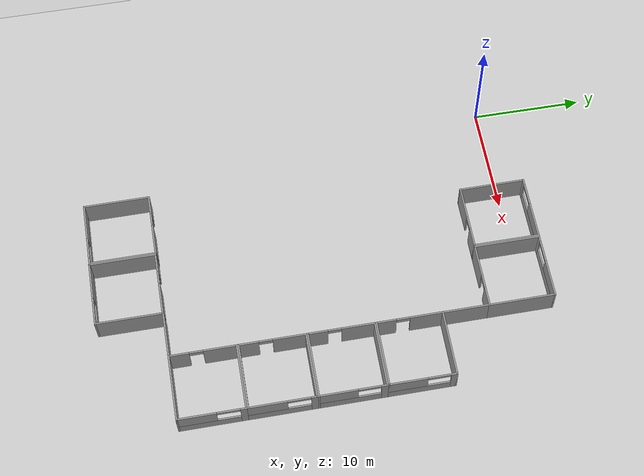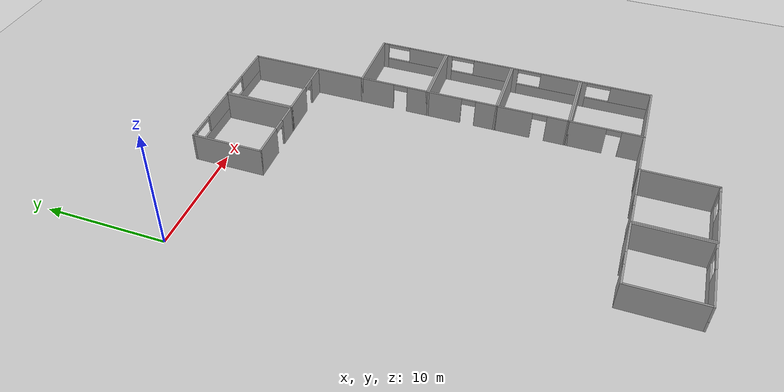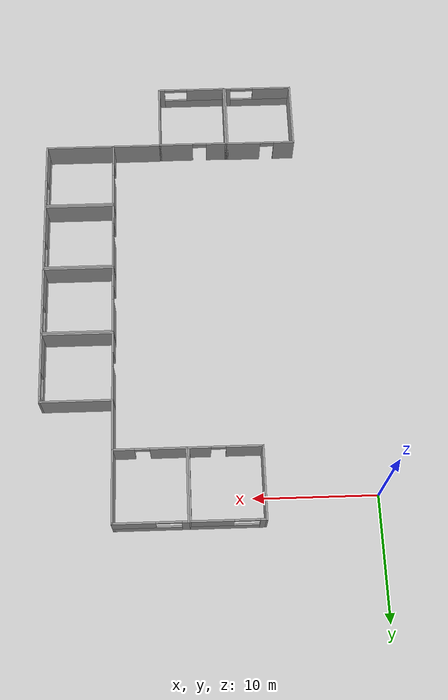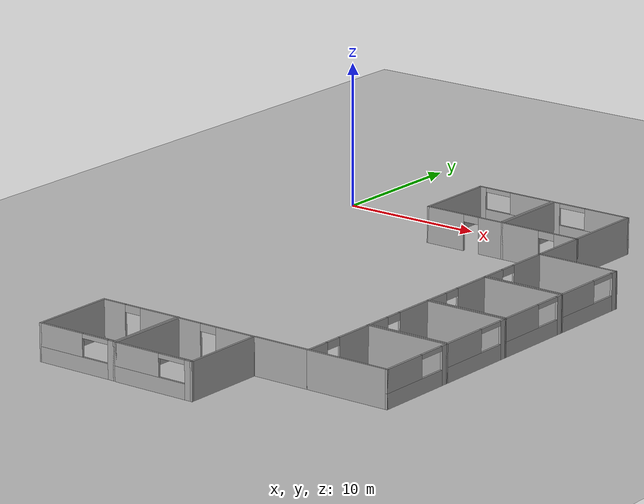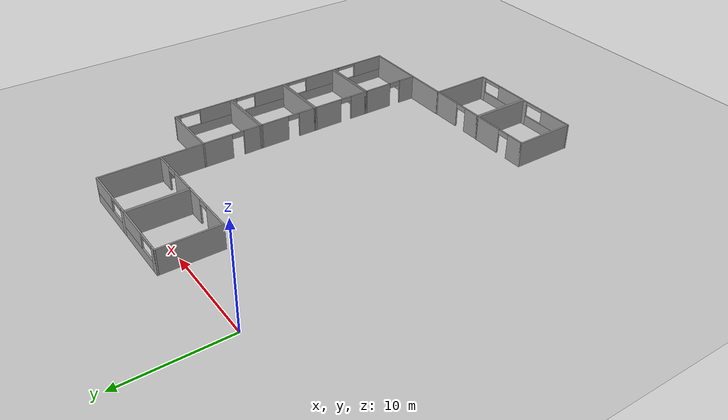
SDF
<sdf version="1.6">
 <world name="default">
  <model name="ground_plane">
   <static>1</static>
   <link name="link">
    <collision name="collision">
     <geometry><plane><normal>0 0 1</normal><size>100 100</size></plane></geometry>
     <surface>
      <contact><collide_bitmask>65535</collide_bitmask></contact>
      <friction><ode><mu>100</mu><mu2>50</mu2></ode></friction>
     </surface>
    </collision>
    <visual name="visual">
     <cast_shadows>0</cast_shadows>
     <geometry><plane><normal>0 0 1</normal><size>100 100</size></plane></geometry>
     <material>
      <script><uri>file://media/materials/scripts/gazebo.material</uri><name>Gazebo/Grey</name></script>
     </material>
    </visual>
   </link>
  </model>
  <model name="patient_room_clone_1">
   <pose>12 0 0 0 -0 0</pose>
   <link name="Wall_26">
    <pose>-0 2.218 0 0 -0 0</pose>
    <visual name="Wall_26_Visual_0">
     <pose>-2.7125 0 1.25 0 -0 0</pose>
     <geometry><box><size>0.575 0.15 2.5</size></box></geometry>
     <material>
      <script><uri>file://media/materials/scripts/gazebo.material</uri><name>Gazebo/Grey</name></script>
      <ambient>1 1 1 1</ambient>
     </material>
     <meta><layer>0</layer></meta>
    </visual>
    <collision name="Wall_26_Collision_0">
     <geometry><box><size>0.575 0.15 2.5</size></box></geometry>
     <pose>-2.7125 0 1.25 0 -0 0</pose>
    </collision>
    <visual name="Wall_26_Visual_1">
     <pose>0.2875 0 0.5 0 -0 0</pose>
     <geometry><box><size>5.425 0.15 1</size></box></geometry>
     <material>
      <script><uri>file://media/materials/scripts/gazebo.material</uri><name>Gazebo/Grey</name></script>
      <ambient>1 1 1 1</ambient>
     </material>
     <meta><layer>0</layer></meta>
    </visual>
    <collision name="Wall_26_Collision_1">
     <geometry><box><size>5.425 0.15 1</size></box></geometry>
     <pose>0.2875 0 0.5 0 -0 0</pose>
    </collision>
    <visual name="Wall_26_Visual_2">
     <pose>1.2875 0 1.75 0 -0 0</pose>
     <geometry><box><size>3.425 0.15 1.5</size></box></geometry>
     <material>
      <script><uri>file://media/materials/scripts/gazebo.material</uri><name>Gazebo/Grey</name></script>
      <ambient>1 1 1 1</ambient>
     </material>
     <meta><layer>0</layer></meta>
    </visual>
    <collision name="Wall_26_Collision_2">
     <geometry><box><size>3.425 0.15 1.5</size></box></geometry>
     <pose>1.2875 0 1.75 0 -0 0</pose>
    </collision>
    <visual name="Wall_26_Visual_3">
     <pose>-1.425 0 2.35 0 -0 0</pose>
     <geometry><box><size>2 0.15 0.3</size></box></geometry>
     <material>
      <script><uri>file://media/materials/scripts/gazebo.material</uri><name>Gazebo/Grey</name></script>
      <ambient>1 1 1 1</ambient>
     </material>
     <meta><layer>0</layer></meta>
    </visual>
    <collision name="Wall_26_Collision_3">
     <geometry><box><size>2 0.15 0.3</size></box></geometry>
     <pose>-1.425 0 2.35 0 -0 0</pose>
    </collision>
   </link>
   <link name="Wall_28">
    <collision name="Wall_28_Collision">
     <geometry><box><size>6 0.15 2.5</size></box></geometry>
     <pose>0 0 1.25 0 -0 0</pose>
    </collision>
    <visual name="Wall_28_Visual">
     <pose>0 0 1.25 0 -0 0</pose>
     <geometry><box><size>6 0.15 2.5</size></box></geometry>
     <material>
      <script><uri>file://media/materials/scripts/gazebo.material</uri><name>Gazebo/Grey</name></script>
      <ambient>1 1 1 1</ambient>
     </material>
     <meta><layer>0</layer></meta>
    </visual>
    <pose>-2.925 -0.707 0 0 -0 -1.5708</pose>
   </link>
   <link name="Wall_29">
    <pose>-0 -3.632 0 0 -0 0</pose>
    <visual name="Wall_29_Visual_0">
     <pose>-1.5125 0 1.25 0 -0 0</pose>
     <geometry><box><size>2.975 0.15 2.5</size></box></geometry>
     <material>
      <script><uri>file://media/materials/scripts/gazebo.material</uri><name>Gazebo/Grey</name></script>
      <ambient>1 1 1 1</ambient>
     </material>
     <meta><layer>0</layer></meta>
    </visual>
    <collision name="Wall_29_Collision_0">
     <geometry><box><size>2.975 0.15 2.5</size></box></geometry>
     <pose>-1.5125 0 1.25 0 -0 0</pose>
    </collision>
    <visual name="Wall_29_Visual_1">
     <pose>2.0875 0 1.25 0 -0 0</pose>
     <geometry><box><size>1.825 0.15 2.5</size></box></geometry>
     <material>
      <script><uri>file://media/materials/scripts/gazebo.material</uri><name>Gazebo/Grey</name></script>
      <ambient>1 1 1 1</ambient>
     </material>
     <meta><layer>0</layer></meta>
    </visual>
    <collision name="Wall_29_Collision_1">
     <geometry><box><size>1.825 0.15 2.5</size></box></geometry>
     <pose>2.0875 0 1.25 0 -0 0</pose>
    </collision>
    <visual name="Wall_29_Visual_2">
     <pose>0.575 0 2.25 0 -0 0</pose>
     <geometry><box><size>1.2 0.15 0.5</size></box></geometry>
     <material>
      <script><uri>file://media/materials/scripts/gazebo.material</uri><name>Gazebo/Grey</name></script>
      <ambient>1 1 1 1</ambient>
     </material>
     <meta><layer>0</layer></meta>
    </visual>
    <collision name="Wall_29_Collision_2">
     <geometry><box><size>1.2 0.15 0.5</size></box></geometry>
     <pose>0.575 0 2.25 0 -0 0</pose>
    </collision>
   </link>
   <link name="Wall_30">
    <collision name="Wall_30_Collision">
     <geometry><box><size>6 0.15 2.5</size></box></geometry>
     <pose>0 0 1.25 0 -0 0</pose>
    </collision>
    <visual name="Wall_30_Visual">
     <pose>0 0 1.25 0 -0 0</pose>
     <geometry><box><size>6 0.15 2.5</size></box></geometry>
     <material>
      <script><uri>file://media/materials/scripts/gazebo.material</uri><name>Gazebo/Grey</name></script>
      <ambient>1 1 1 1</ambient>
     </material>
     <meta><layer>0</layer></meta>
    </visual>
    <pose>2.925 -0.707 0 0 -0 1.5708</pose>
   </link>
   <static>1</static>
  </model>
  <model name="patient_room_clone_3">
   <pose>18 0 0 0 -0 0</pose>
   <link name="Wall_26">
    <pose>-0 2.218 0 0 -0 0</pose>
    <visual name="Wall_26_Visual_0">
     <pose>-2.7125 0 1.25 0 -0 0</pose>
     <geometry><box><size>0.575 0.15 2.5</size></box></geometry>
     <material>
      <script><uri>file://media/materials/scripts/gazebo.material</uri><name>Gazebo/Grey</name></script>
      <ambient>1 1 1 1</ambient>
     </material>
     <meta><layer>0</layer></meta>
    </visual>
    <collision name="Wall_26_Collision_0">
     <geometry><box><size>0.575 0.15 2.5</size></box></geometry>
     <pose>-2.7125 0 1.25 0 -0 0</pose>
    </collision>
    <visual name="Wall_26_Visual_1">
     <pose>0.2875 0 0.5 0 -0 0</pose>
     <geometry><box><size>5.425 0.15 1</size></box></geometry>
     <material>
      <script><uri>file://media/materials/scripts/gazebo.material</uri><name>Gazebo/Grey</name></script>
      <ambient>1 1 1 1</ambient>
     </material>
     <meta><layer>0</layer></meta>
    </visual>
    <collision name="Wall_26_Collision_1">
     <geometry><box><size>5.425 0.15 1</size></box></geometry>
     <pose>0.2875 0 0.5 0 -0 0</pose>
    </collision>
    <visual name="Wall_26_Visual_2">
     <pose>1.2875 0 1.75 0 -0 0</pose>
     <geometry><box><size>3.425 0.15 1.5</size></box></geometry>
     <material>
      <script><uri>file://media/materials/scripts/gazebo.material</uri><name>Gazebo/Grey</name></script>
      <ambient>1 1 1 1</ambient>
     </material>
     <meta><layer>0</layer></meta>
    </visual>
    <collision name="Wall_26_Collision_2">
     <geometry><box><size>3.425 0.15 1.5</size></box></geometry>
     <pose>1.2875 0 1.75 0 -0 0</pose>
    </collision>
    <visual name="Wall_26_Visual_3">
     <pose>-1.425 0 2.35 0 -0 0</pose>
     <geometry><box><size>2 0.15 0.3</size></box></geometry>
     <material>
      <script><uri>file://media/materials/scripts/gazebo.material</uri><name>Gazebo/Grey</name></script>
      <ambient>1 1 1 1</ambient>
     </material>
     <meta><layer>0</layer></meta>
    </visual>
    <collision name="Wall_26_Collision_3">
     <geometry><box><size>2 0.15 0.3</size></box></geometry>
     <pose>-1.425 0 2.35 0 -0 0</pose>
    </collision>
   </link>
   <link name="Wall_28">
    <collision name="Wall_28_Collision">
     <geometry><box><size>6 0.15 2.5</size></box></geometry>
     <pose>0 0 1.25 0 -0 0</pose>
    </collision>
    <visual name="Wall_28_Visual">
     <pose>0 0 1.25 0 -0 0</pose>
     <geometry><box><size>6 0.15 2.5</size></box></geometry>
     <material>
      <script><uri>file://media/materials/scripts/gazebo.material</uri><name>Gazebo/Grey</name></script>
      <ambient>1 1 1 1</ambient>
     </material>
     <meta><layer>0</layer></meta>
    </visual>
    <pose>-2.925 -0.707 0 0 -0 -1.5708</pose>
   </link>
   <link name="Wall_29">
    <pose>-0 -3.632 0 0 -0 0</pose>
    <visual name="Wall_29_Visual_0">
     <pose>-1.5125 0 1.25 0 -0 0</pose>
     <geometry><box><size>2.975 0.15 2.5</size></box></geometry>
     <material>
      <script><uri>file://media/materials/scripts/gazebo.material</uri><name>Gazebo/Grey</name></script>
      <ambient>1 1 1 1</ambient>
     </material>
     <meta><layer>0</layer></meta>
    </visual>
    <collision name="Wall_29_Collision_0">
     <geometry><box><size>2.975 0.15 2.5</size></box></geometry>
     <pose>-1.5125 0 1.25 0 -0 0</pose>
    </collision>
    <visual name="Wall_29_Visual_1">
     <pose>2.0875 0 1.25 0 -0 0</pose>
     <geometry><box><size>1.825 0.15 2.5</size></box></geometry>
     <material>
      <script><uri>file://media/materials/scripts/gazebo.material</uri><name>Gazebo/Grey</name></script>
      <ambient>1 1 1 1</ambient>
     </material>
     <meta><layer>0</layer></meta>
    </visual>
    <collision name="Wall_29_Collision_1">
     <geometry><box><size>1.825 0.15 2.5</size></box></geometry>
     <pose>2.0875 0 1.25 0 -0 0</pose>
    </collision>
    <visual name="Wall_29_Visual_2">
     <pose>0.575 0 2.25 0 -0 0</pose>
     <geometry><box><size>1.2 0.15 0.5</size></box></geometry>
     <material>
      <script><uri>file://media/materials/scripts/gazebo.material</uri><name>Gazebo/Grey</name></script>
      <ambient>1 1 1 1</ambient>
     </material>
     <meta><layer>0</layer></meta>
    </visual>
    <collision name="Wall_29_Collision_2">
     <geometry><box><size>1.2 0.15 0.5</size></box></geometry>
     <pose>0.575 0 2.25 0 -0 0</pose>
    </collision>
   </link>
   <link name="Wall_30">
    <collision name="Wall_30_Collision">
     <geometry><box><size>6 0.15 2.5</size></box></geometry>
     <pose>0 0 1.25 0 -0 0</pose>
    </collision>
    <visual name="Wall_30_Visual">
     <pose>0 0 1.25 0 -0 0</pose>
     <geometry><box><size>6 0.15 2.5</size></box></geometry>
     <material>
      <script><uri>file://media/materials/scripts/gazebo.material</uri><name>Gazebo/Grey</name></script>
      <ambient>1 1 1 1</ambient>
     </material>
     <meta><layer>0</layer></meta>
    </visual>
    <pose>2.925 -0.707 0 0 -0 1.5708</pose>
   </link>
   <static>1</static>
  </model>
  <model name="wall_4m_1">
   <pose>14.4505 -6.46035 0 0 -0 1.5708</pose>
   <link name="Wall_36">
    <collision name="Wall_36_Collision">
     <geometry><box><size>4 0.15 2.5</size></box></geometry>
     <pose>0 0 1.25 0 -0 0</pose>
    </collision>
    <visual name="Wall_36_Visual">
     <pose>0 0 1.25 0 -0 0</pose>
     <geometry><box><size>4 0.15 2.5</size></box></geometry>
     <material>
      <script><uri>file://media/materials/scripts/gazebo.material</uri><name>Gazebo/Grey</name></script>
      <ambient>1 1 1 1</ambient>
     </material>
     <meta><layer>0</layer></meta>
    </visual>
    <pose>0.760563 -6.47163 0 0 -0 0</pose>
   </link>
   <static>1</static>
  </model>
  <model name="wall_4m_2">
   <pose>18.0836 -25.1539 0 0 -0 0</pose>
   <link name="Wall_36">
    <collision name="Wall_36_Collision">
     <geometry><box><size>4 0.15 2.5</size></box></geometry>
     <pose>0 0 1.25 0 -0 0</pose>
    </collision>
    <visual name="Wall_36_Visual">
     <pose>0 0 1.25 0 -0 0</pose>
     <geometry><box><size>4 0.15 2.5</size></box></geometry>
     <material>
      <script><uri>file://media/materials/scripts/gazebo.material</uri><name>Gazebo/Grey</name></script>
      <ambient>1 1 1 1</ambient>
     </material>
     <meta><layer>0</layer></meta>
    </visual>
    <pose>0.760563 -6.47163 0 0 -0 0</pose>
   </link>
   <static>1</static>
  </model>
  <model name="patient_room_clone_3_clone">
   <pose>7.85 -35.26 0 0 -0 -3.14159</pose>
   <link name="Wall_26">
    <pose>-0 2.218 0 0 -0 0</pose>
    <visual name="Wall_26_Visual_0">
     <pose>-2.7125 0 1.25 0 -0 0</pose>
     <geometry><box><size>0.575 0.15 2.5</size></box></geometry>
     <material>
      <script><uri>file://media/materials/scripts/gazebo.material</uri><name>Gazebo/Grey</name></script>
      <ambient>1 1 1 1</ambient>
     </material>
     <meta><layer>0</layer></meta>
    </visual>
    <collision name="Wall_26_Collision_0">
     <geometry><box><size>0.575 0.15 2.5</size></box></geometry>
     <pose>-2.7125 0 1.25 0 -0 0</pose>
    </collision>
    <visual name="Wall_26_Visual_1">
     <pose>0.2875 0 0.5 0 -0 0</pose>
     <geometry><box><size>5.425 0.15 1</size></box></geometry>
     <material>
      <script><uri>file://media/materials/scripts/gazebo.material</uri><name>Gazebo/Grey</name></script>
      <ambient>1 1 1 1</ambient>
     </material>
     <meta><layer>0</layer></meta>
    </visual>
    <collision name="Wall_26_Collision_1">
     <geometry><box><size>5.425 0.15 1</size></box></geometry>
     <pose>0.2875 0 0.5 0 -0 0</pose>
    </collision>
    <visual name="Wall_26_Visual_2">
     <pose>1.2875 0 1.75 0 -0 0</pose>
     <geometry><box><size>3.425 0.15 1.5</size></box></geometry>
     <material>
      <script><uri>file://media/materials/scripts/gazebo.material</uri><name>Gazebo/Grey</name></script>
      <ambient>1 1 1 1</ambient>
     </material>
     <meta><layer>0</layer></meta>
    </visual>
    <collision name="Wall_26_Collision_2">
     <geometry><box><size>3.425 0.15 1.5</size></box></geometry>
     <pose>1.2875 0 1.75 0 -0 0</pose>
    </collision>
    <visual name="Wall_26_Visual_3">
     <pose>-1.425 0 2.35 0 -0 0</pose>
     <geometry><box><size>2 0.15 0.3</size></box></geometry>
     <material>
      <script><uri>file://media/materials/scripts/gazebo.material</uri><name>Gazebo/Grey</name></script>
      <ambient>1 1 1 1</ambient>
     </material>
     <meta><layer>0</layer></meta>
    </visual>
    <collision name="Wall_26_Collision_3">
     <geometry><box><size>2 0.15 0.3</size></box></geometry>
     <pose>-1.425 0 2.35 0 -0 0</pose>
    </collision>
   </link>
   <link name="Wall_28">
    <collision name="Wall_28_Collision">
     <geometry><box><size>6 0.15 2.5</size></box></geometry>
     <pose>0 0 1.25 0 -0 0</pose>
    </collision>
    <visual name="Wall_28_Visual">
     <pose>0 0 1.25 0 -0 0</pose>
     <geometry><box><size>6 0.15 2.5</size></box></geometry>
     <material>
      <script><uri>file://media/materials/scripts/gazebo.material</uri><name>Gazebo/Grey</name></script>
      <ambient>1 1 1 1</ambient>
     </material>
     <meta><layer>0</layer></meta>
    </visual>
    <pose>-2.925 -0.707 0 0 -0 -1.5708</pose>
   </link>
   <link name="Wall_29">
    <pose>-0 -3.632 0 0 -0 0</pose>
    <visual name="Wall_29_Visual_0">
     <pose>-1.5125 0 1.25 0 -0 0</pose>
     <geometry><box><size>2.975 0.15 2.5</size></box></geometry>
     <material>
      <script><uri>file://media/materials/scripts/gazebo.material</uri><name>Gazebo/Grey</name></script>
      <ambient>1 1 1 1</ambient>
     </material>
     <meta><layer>0</layer></meta>
    </visual>
    <collision name="Wall_29_Collision_0">
     <geometry><box><size>2.975 0.15 2.5</size></box></geometry>
     <pose>-1.5125 0 1.25 0 -0 0</pose>
    </collision>
    <visual name="Wall_29_Visual_1">
     <pose>2.0875 0 1.25 0 -0 0</pose>
     <geometry><box><size>1.825 0.15 2.5</size></box></geometry>
     <material>
      <script><uri>file://media/materials/scripts/gazebo.material</uri><name>Gazebo/Grey</name></script>
      <ambient>1 1 1 1</ambient>
     </material>
     <meta><layer>0</layer></meta>
    </visual>
    <collision name="Wall_29_Collision_1">
     <geometry><box><size>1.825 0.15 2.5</size></box></geometry>
     <pose>2.0875 0 1.25 0 -0 0</pose>
    </collision>
    <visual name="Wall_29_Visual_2">
     <pose>0.575 0 2.25 0 -0 0</pose>
     <geometry><box><size>1.2 0.15 0.5</size></box></geometry>
     <material>
      <script><uri>file://media/materials/scripts/gazebo.material</uri><name>Gazebo/Grey</name></script>
      <ambient>1 1 1 1</ambient>
     </material>
     <meta><layer>0</layer></meta>
    </visual>
    <collision name="Wall_29_Collision_2">
     <geometry><box><size>1.2 0.15 0.5</size></box></geometry>
     <pose>0.575 0 2.25 0 -0 0</pose>
    </collision>
   </link>
   <link name="Wall_30">
    <collision name="Wall_30_Collision">
     <geometry><box><size>6 0.15 2.5</size></box></geometry>
     <pose>0 0 1.25 0 -0 0</pose>
    </collision>
    <visual name="Wall_30_Visual">
     <pose>0 0 1.25 0 -0 0</pose>
     <geometry><box><size>6 0.15 2.5</size></box></geometry>
     <material>
      <script><uri>file://media/materials/scripts/gazebo.material</uri><name>Gazebo/Grey</name></script>
      <ambient>1 1 1 1</ambient>
     </material>
     <meta><layer>0</layer></meta>
    </visual>
    <pose>2.925 -0.707 0 0 -0 1.5708</pose>
   </link>
   <static>1</static>
  </model>
  <model name="patient_room_clone_3_clone_clone_1">
   <pose>13.85 -35.2953 0 0 -0 3.14159</pose>
   <link name="Wall_26">
    <pose>-0 2.218 0 0 -0 0</pose>
    <visual name="Wall_26_Visual_0">
     <pose>-2.7125 0 1.25 0 -0 0</pose>
     <geometry><box><size>0.575 0.15 2.5</size></box></geometry>
     <material>
      <script><uri>file://media/materials/scripts/gazebo.material</uri><name>Gazebo/Grey</name></script>
      <ambient>1 1 1 1</ambient>
     </material>
     <meta><layer>0</layer></meta>
    </visual>
    <collision name="Wall_26_Collision_0">
     <geometry><box><size>0.575 0.15 2.5</size></box></geometry>
     <pose>-2.7125 0 1.25 0 -0 0</pose>
    </collision>
    <visual name="Wall_26_Visual_1">
     <pose>0.2875 0 0.5 0 -0 0</pose>
     <geometry><box><size>5.425 0.15 1</size></box></geometry>
     <material>
      <script><uri>file://media/materials/scripts/gazebo.material</uri><name>Gazebo/Grey</name></script>
      <ambient>1 1 1 1</ambient>
     </material>
     <meta><layer>0</layer></meta>
    </visual>
    <collision name="Wall_26_Collision_1">
     <geometry><box><size>5.425 0.15 1</size></box></geometry>
     <pose>0.2875 0 0.5 0 -0 0</pose>
    </collision>
    <visual name="Wall_26_Visual_2">
     <pose>1.2875 0 1.75 0 -0 0</pose>
     <geometry><box><size>3.425 0.15 1.5</size></box></geometry>
     <material>
      <script><uri>file://media/materials/scripts/gazebo.material</uri><name>Gazebo/Grey</name></script>
      <ambient>1 1 1 1</ambient>
     </material>
     <meta><layer>0</layer></meta>
    </visual>
    <collision name="Wall_26_Collision_2">
     <geometry><box><size>3.425 0.15 1.5</size></box></geometry>
     <pose>1.2875 0 1.75 0 -0 0</pose>
    </collision>
    <visual name="Wall_26_Visual_3">
     <pose>-1.425 0 2.35 0 -0 0</pose>
     <geometry><box><size>2 0.15 0.3</size></box></geometry>
     <material>
      <script><uri>file://media/materials/scripts/gazebo.material</uri><name>Gazebo/Grey</name></script>
      <ambient>1 1 1 1</ambient>
     </material>
     <meta><layer>0</layer></meta>
    </visual>
    <collision name="Wall_26_Collision_3">
     <geometry><box><size>2 0.15 0.3</size></box></geometry>
     <pose>-1.425 0 2.35 0 -0 0</pose>
    </collision>
   </link>
   <link name="Wall_28">
    <collision name="Wall_28_Collision">
     <geometry><box><size>6 0.15 2.5</size></box></geometry>
     <pose>0 0 1.25 0 -0 0</pose>
    </collision>
    <visual name="Wall_28_Visual">
     <pose>0 0 1.25 0 -0 0</pose>
     <geometry><box><size>6 0.15 2.5</size></box></geometry>
     <material>
      <script><uri>file://media/materials/scripts/gazebo.material</uri><name>Gazebo/Grey</name></script>
      <ambient>1 1 1 1</ambient>
     </material>
     <meta><layer>0</layer></meta>
    </visual>
    <pose>-2.925 -0.707 0 0 -0 -1.5708</pose>
   </link>
   <link name="Wall_29">
    <pose>-0 -3.632 0 0 -0 0</pose>
    <visual name="Wall_29_Visual_0">
     <pose>-1.5125 0 1.25 0 -0 0</pose>
     <geometry><box><size>2.975 0.15 2.5</size></box></geometry>
     <material>
      <script><uri>file://media/materials/scripts/gazebo.material</uri><name>Gazebo/Grey</name></script>
      <ambient>1 1 1 1</ambient>
     </material>
     <meta><layer>0</layer></meta>
    </visual>
    <collision name="Wall_29_Collision_0">
     <geometry><box><size>2.975 0.15 2.5</size></box></geometry>
     <pose>-1.5125 0 1.25 0 -0 0</pose>
    </collision>
    <visual name="Wall_29_Visual_1">
     <pose>2.0875 0 1.25 0 -0 0</pose>
     <geometry><box><size>1.825 0.15 2.5</size></box></geometry>
     <material>
      <script><uri>file://media/materials/scripts/gazebo.material</uri><name>Gazebo/Grey</name></script>
      <ambient>1 1 1 1</ambient>
     </material>
     <meta><layer>0</layer></meta>
    </visual>
    <collision name="Wall_29_Collision_1">
     <geometry><box><size>1.825 0.15 2.5</size></box></geometry>
     <pose>2.0875 0 1.25 0 -0 0</pose>
    </collision>
    <visual name="Wall_29_Visual_2">
     <pose>0.575 0 2.25 0 -0 0</pose>
     <geometry><box><size>1.2 0.15 0.5</size></box></geometry>
     <material>
      <script><uri>file://media/materials/scripts/gazebo.material</uri><name>Gazebo/Grey</name></script>
      <ambient>1 1 1 1</ambient>
     </material>
     <meta><layer>0</layer></meta>
    </visual>
    <collision name="Wall_29_Collision_2">
     <geometry><box><size>1.2 0.15 0.5</size></box></geometry>
     <pose>0.575 0 2.25 0 -0 0</pose>
    </collision>
   </link>
   <link name="Wall_30">
    <collision name="Wall_30_Collision">
     <geometry><box><size>6 0.15 2.5</size></box></geometry>
     <pose>0 0 1.25 0 -0 0</pose>
    </collision>
    <visual name="Wall_30_Visual">
     <pose>0 0 1.25 0 -0 0</pose>
     <geometry><box><size>6 0.15 2.5</size></box></geometry>
     <material>
      <script><uri>file://media/materials/scripts/gazebo.material</uri><name>Gazebo/Grey</name></script>
      <ambient>1 1 1 1</ambient>
     </material>
     <meta><layer>0</layer></meta>
    </visual>
    <pose>2.925 -0.707 0 0 -0 1.5708</pose>
   </link>
   <static>1</static>
  </model>
  <model name="patient_room_clone_3_clone_0">
   <pose>24.55 -10.7 0 0 0 -1.5708</pose>
   <link name="Wall_26">
    <pose>-0 2.218 0 0 -0 0</pose>
    <visual name="Wall_26_Visual_0">
     <pose>-2.7125 0 1.25 0 -0 0</pose>
     <geometry><box><size>0.575 0.15 2.5</size></box></geometry>
     <material>
      <script><uri>file://media/materials/scripts/gazebo.material</uri><name>Gazebo/Grey</name></script>
      <ambient>1 1 1 1</ambient>
     </material>
     <meta><layer>0</layer></meta>
    </visual>
    <collision name="Wall_26_Collision_0">
     <geometry><box><size>0.575 0.15 2.5</size></box></geometry>
     <pose>-2.7125 0 1.25 0 -0 0</pose>
    </collision>
    <visual name="Wall_26_Visual_1">
     <pose>0.2875 0 0.5 0 -0 0</pose>
     <geometry><box><size>5.425 0.15 1</size></box></geometry>
     <material>
      <script><uri>file://media/materials/scripts/gazebo.material</uri><name>Gazebo/Grey</name></script>
      <ambient>1 1 1 1</ambient>
     </material>
     <meta><layer>0</layer></meta>
    </visual>
    <collision name="Wall_26_Collision_1">
     <geometry><box><size>5.425 0.15 1</size></box></geometry>
     <pose>0.2875 0 0.5 0 -0 0</pose>
    </collision>
    <visual name="Wall_26_Visual_2">
     <pose>1.2875 0 1.75 0 -0 0</pose>
     <geometry><box><size>3.425 0.15 1.5</size></box></geometry>
     <material>
      <script><uri>file://media/materials/scripts/gazebo.material</uri><name>Gazebo/Grey</name></script>
      <ambient>1 1 1 1</ambient>
     </material>
     <meta><layer>0</layer></meta>
    </visual>
    <collision name="Wall_26_Collision_2">
     <geometry><box><size>3.425 0.15 1.5</size></box></geometry>
     <pose>1.2875 0 1.75 0 -0 0</pose>
    </collision>
    <visual name="Wall_26_Visual_3">
     <pose>-1.425 0 2.35 0 -0 0</pose>
     <geometry><box><size>2 0.15 0.3</size></box></geometry>
     <material>
      <script><uri>file://media/materials/scripts/gazebo.material</uri><name>Gazebo/Grey</name></script>
      <ambient>1 1 1 1</ambient>
     </material>
     <meta><layer>0</layer></meta>
    </visual>
    <collision name="Wall_26_Collision_3">
     <geometry><box><size>2 0.15 0.3</size></box></geometry>
     <pose>-1.425 0 2.35 0 -0 0</pose>
    </collision>
   </link>
   <link name="Wall_28">
    <collision name="Wall_28_Collision">
     <geometry><box><size>6 0.15 2.5</size></box></geometry>
     <pose>0 0 1.25 0 -0 0</pose>
    </collision>
    <visual name="Wall_28_Visual">
     <pose>0 0 1.25 0 -0 0</pose>
     <geometry><box><size>6 0.15 2.5</size></box></geometry>
     <material>
      <script><uri>file://media/materials/scripts/gazebo.material</uri><name>Gazebo/Grey</name></script>
      <ambient>1 1 1 1</ambient>
     </material>
     <meta><layer>0</layer></meta>
    </visual>
    <pose>-2.925 -0.707 0 0 -0 -1.5708</pose>
   </link>
   <link name="Wall_29">
    <pose>-0 -3.632 0 0 -0 0</pose>
    <visual name="Wall_29_Visual_0">
     <pose>-1.5125 0 1.25 0 -0 0</pose>
     <geometry><box><size>2.975 0.15 2.5</size></box></geometry>
     <material>
      <script><uri>file://media/materials/scripts/gazebo.material</uri><name>Gazebo/Grey</name></script>
      <ambient>1 1 1 1</ambient>
     </material>
     <meta><layer>0</layer></meta>
    </visual>
    <collision name="Wall_29_Collision_0">
     <geometry><box><size>2.975 0.15 2.5</size></box></geometry>
     <pose>-1.5125 0 1.25 0 -0 0</pose>
    </collision>
    <visual name="Wall_29_Visual_1">
     <pose>2.0875 0 1.25 0 -0 0</pose>
     <geometry><box><size>1.825 0.15 2.5</size></box></geometry>
     <material>
      <script><uri>file://media/materials/scripts/gazebo.material</uri><name>Gazebo/Grey</name></script>
      <ambient>1 1 1 1</ambient>
     </material>
     <meta><layer>0</layer></meta>
    </visual>
    <collision name="Wall_29_Collision_1">
     <geometry><box><size>1.825 0.15 2.5</size></box></geometry>
     <pose>2.0875 0 1.25 0 -0 0</pose>
    </collision>
    <visual name="Wall_29_Visual_2">
     <pose>0.575 0 2.25 0 -0 0</pose>
     <geometry><box><size>1.2 0.15 0.5</size></box></geometry>
     <material>
      <script><uri>file://media/materials/scripts/gazebo.material</uri><name>Gazebo/Grey</name></script>
      <ambient>1 1 1 1</ambient>
     </material>
     <meta><layer>0</layer></meta>
    </visual>
    <collision name="Wall_29_Collision_2">
     <geometry><box><size>1.2 0.15 0.5</size></box></geometry>
     <pose>0.575 0 2.25 0 -0 0</pose>
    </collision>
   </link>
   <link name="Wall_30">
    <collision name="Wall_30_Collision">
     <geometry><box><size>6 0.15 2.5</size></box></geometry>
     <pose>0 0 1.25 0 -0 0</pose>
    </collision>
    <visual name="Wall_30_Visual">
     <pose>0 0 1.25 0 -0 0</pose>
     <geometry><box><size>6 0.15 2.5</size></box></geometry>
     <material>
      <script><uri>file://media/materials/scripts/gazebo.material</uri><name>Gazebo/Grey</name></script>
      <ambient>1 1 1 1</ambient>
     </material>
     <meta><layer>0</layer></meta>
    </visual>
    <pose>2.925 -0.707 0 0 -0 1.5708</pose>
   </link>
   <static>1</static>
  </model>
  <model name="patient_room_clone_3_clone_0_clone_2">
   <pose>24.55 -16.7 0 0 0 -1.5708</pose>
   <link name="Wall_26">
    <pose>-0 2.218 0 0 -0 0</pose>
    <visual name="Wall_26_Visual_0">
     <pose>-2.7125 0 1.25 0 -0 0</pose>
     <geometry><box><size>0.575 0.15 2.5</size></box></geometry>
     <material>
      <script><uri>file://media/materials/scripts/gazebo.material</uri><name>Gazebo/Grey</name></script>
      <ambient>1 1 1 1</ambient>
     </material>
     <meta><layer>0</layer></meta>
    </visual>
    <collision name="Wall_26_Collision_0">
     <geometry><box><size>0.575 0.15 2.5</size></box></geometry>
     <pose>-2.7125 0 1.25 0 -0 0</pose>
    </collision>
    <visual name="Wall_26_Visual_1">
     <pose>0.2875 0 0.5 0 -0 0</pose>
     <geometry><box><size>5.425 0.15 1</size></box></geometry>
     <material>
      <script><uri>file://media/materials/scripts/gazebo.material</uri><name>Gazebo/Grey</name></script>
      <ambient>1 1 1 1</ambient>
     </material>
     <meta><layer>0</layer></meta>
    </visual>
    <collision name="Wall_26_Collision_1">
     <geometry><box><size>5.425 0.15 1</size></box></geometry>
     <pose>0.2875 0 0.5 0 -0 0</pose>
    </collision>
    <visual name="Wall_26_Visual_2">
     <pose>1.2875 0 1.75 0 -0 0</pose>
     <geometry><box><size>3.425 0.15 1.5</size></box></geometry>
     <material>
      <script><uri>file://media/materials/scripts/gazebo.material</uri><name>Gazebo/Grey</name></script>
      <ambient>1 1 1 1</ambient>
     </material>
     <meta><layer>0</layer></meta>
    </visual>
    <collision name="Wall_26_Collision_2">
     <geometry><box><size>3.425 0.15 1.5</size></box></geometry>
     <pose>1.2875 0 1.75 0 -0 0</pose>
    </collision>
    <visual name="Wall_26_Visual_3">
     <pose>-1.425 0 2.35 0 -0 0</pose>
     <geometry><box><size>2 0.15 0.3</size></box></geometry>
     <material>
      <script><uri>file://media/materials/scripts/gazebo.material</uri><name>Gazebo/Grey</name></script>
      <ambient>1 1 1 1</ambient>
     </material>
     <meta><layer>0</layer></meta>
    </visual>
    <collision name="Wall_26_Collision_3">
     <geometry><box><size>2 0.15 0.3</size></box></geometry>
     <pose>-1.425 0 2.35 0 -0 0</pose>
    </collision>
   </link>
   <link name="Wall_28">
    <collision name="Wall_28_Collision">
     <geometry><box><size>6 0.15 2.5</size></box></geometry>
     <pose>0 0 1.25 0 -0 0</pose>
    </collision>
    <visual name="Wall_28_Visual">
     <pose>0 0 1.25 0 -0 0</pose>
     <geometry><box><size>6 0.15 2.5</size></box></geometry>
     <material>
      <script><uri>file://media/materials/scripts/gazebo.material</uri><name>Gazebo/Grey</name></script>
      <ambient>1 1 1 1</ambient>
     </material>
     <meta><layer>0</layer></meta>
    </visual>
    <pose>-2.925 -0.707 0 0 -0 -1.5708</pose>
   </link>
   <link name="Wall_29">
    <pose>-0 -3.632 0 0 -0 0</pose>
    <visual name="Wall_29_Visual_0">
     <pose>-1.5125 0 1.25 0 -0 0</pose>
     <geometry><box><size>2.975 0.15 2.5</size></box></geometry>
     <material>
      <script><uri>file://media/materials/scripts/gazebo.material</uri><name>Gazebo/Grey</name></script>
      <ambient>1 1 1 1</ambient>
     </material>
     <meta><layer>0</layer></meta>
    </visual>
    <collision name="Wall_29_Collision_0">
     <geometry><box><size>2.975 0.15 2.5</size></box></geometry>
     <pose>-1.5125 0 1.25 0 -0 0</pose>
    </collision>
    <visual name="Wall_29_Visual_1">
     <pose>2.0875 0 1.25 0 -0 0</pose>
     <geometry><box><size>1.825 0.15 2.5</size></box></geometry>
     <material>
      <script><uri>file://media/materials/scripts/gazebo.material</uri><name>Gazebo/Grey</name></script>
      <ambient>1 1 1 1</ambient>
     </material>
     <meta><layer>0</layer></meta>
    </visual>
    <collision name="Wall_29_Collision_1">
     <geometry><box><size>1.825 0.15 2.5</size></box></geometry>
     <pose>2.0875 0 1.25 0 -0 0</pose>
    </collision>
    <visual name="Wall_29_Visual_2">
     <pose>0.575 0 2.25 0 -0 0</pose>
     <geometry><box><size>1.2 0.15 0.5</size></box></geometry>
     <material>
      <script><uri>file://media/materials/scripts/gazebo.material</uri><name>Gazebo/Grey</name></script>
      <ambient>1 1 1 1</ambient>
     </material>
     <meta><layer>0</layer></meta>
    </visual>
    <collision name="Wall_29_Collision_2">
     <geometry><box><size>1.2 0.15 0.5</size></box></geometry>
     <pose>0.575 0 2.25 0 -0 0</pose>
    </collision>
   </link>
   <link name="Wall_30">
    <collision name="Wall_30_Collision">
     <geometry><box><size>6 0.15 2.5</size></box></geometry>
     <pose>0 0 1.25 0 -0 0</pose>
    </collision>
    <visual name="Wall_30_Visual">
     <pose>0 0 1.25 0 -0 0</pose>
     <geometry><box><size>6 0.15 2.5</size></box></geometry>
     <material>
      <script><uri>file://media/materials/scripts/gazebo.material</uri><name>Gazebo/Grey</name></script>
      <ambient>1 1 1 1</ambient>
     </material>
     <meta><layer>0</layer></meta>
    </visual>
    <pose>2.925 -0.707 0 0 -0 1.5708</pose>
   </link>
   <static>1</static>
  </model>
  <model name="patient_room_clone_3_clone_0_clone_3">
   <pose>24.55 -22.7 0 0 0 -1.5708</pose>
   <link name="Wall_26">
    <pose>-0 2.218 0 0 -0 0</pose>
    <visual name="Wall_26_Visual_0">
     <pose>-2.7125 0 1.25 0 -0 0</pose>
     <geometry><box><size>0.575 0.15 2.5</size></box></geometry>
     <material>
      <script><uri>file://media/materials/scripts/gazebo.material</uri><name>Gazebo/Grey</name></script>
      <ambient>1 1 1 1</ambient>
     </material>
     <meta><layer>0</layer></meta>
    </visual>
    <collision name="Wall_26_Collision_0">
     <geometry><box><size>0.575 0.15 2.5</size></box></geometry>
     <pose>-2.7125 0 1.25 0 -0 0</pose>
    </collision>
    <visual name="Wall_26_Visual_1">
     <pose>0.2875 0 0.5 0 -0 0</pose>
     <geometry><box><size>5.425 0.15 1</size></box></geometry>
     <material>
      <script><uri>file://media/materials/scripts/gazebo.material</uri><name>Gazebo/Grey</name></script>
      <ambient>1 1 1 1</ambient>
     </material>
     <meta><layer>0</layer></meta>
    </visual>
    <collision name="Wall_26_Collision_1">
     <geometry><box><size>5.425 0.15 1</size></box></geometry>
     <pose>0.2875 0 0.5 0 -0 0</pose>
    </collision>
    <visual name="Wall_26_Visual_2">
     <pose>1.2875 0 1.75 0 -0 0</pose>
     <geometry><box><size>3.425 0.15 1.5</size></box></geometry>
     <material>
      <script><uri>file://media/materials/scripts/gazebo.material</uri><name>Gazebo/Grey</name></script>
      <ambient>1 1 1 1</ambient>
     </material>
     <meta><layer>0</layer></meta>
    </visual>
    <collision name="Wall_26_Collision_2">
     <geometry><box><size>3.425 0.15 1.5</size></box></geometry>
     <pose>1.2875 0 1.75 0 -0 0</pose>
    </collision>
    <visual name="Wall_26_Visual_3">
     <pose>-1.425 0 2.35 0 -0 0</pose>
     <geometry><box><size>2 0.15 0.3</size></box></geometry>
     <material>
      <script><uri>file://media/materials/scripts/gazebo.material</uri><name>Gazebo/Grey</name></script>
      <ambient>1 1 1 1</ambient>
     </material>
     <meta><layer>0</layer></meta>
    </visual>
    <collision name="Wall_26_Collision_3">
     <geometry><box><size>2 0.15 0.3</size></box></geometry>
     <pose>-1.425 0 2.35 0 -0 0</pose>
    </collision>
   </link>
   <link name="Wall_28">
    <collision name="Wall_28_Collision">
     <geometry><box><size>6 0.15 2.5</size></box></geometry>
     <pose>0 0 1.25 0 -0 0</pose>
    </collision>
    <visual name="Wall_28_Visual">
     <pose>0 0 1.25 0 -0 0</pose>
     <geometry><box><size>6 0.15 2.5</size></box></geometry>
     <material>
      <script><uri>file://media/materials/scripts/gazebo.material</uri><name>Gazebo/Grey</name></script>
      <ambient>1 1 1 1</ambient>
     </material>
     <meta><layer>0</layer></meta>
    </visual>
    <pose>-2.925 -0.707 0 0 -0 -1.5708</pose>
   </link>
   <link name="Wall_29">
    <pose>-0 -3.632 0 0 -0 0</pose>
    <visual name="Wall_29_Visual_0">
     <pose>-1.5125 0 1.25 0 -0 0</pose>
     <geometry><box><size>2.975 0.15 2.5</size></box></geometry>
     <material>
      <script><uri>file://media/materials/scripts/gazebo.material</uri><name>Gazebo/Grey</name></script>
      <ambient>1 1 1 1</ambient>
     </material>
     <meta><layer>0</layer></meta>
    </visual>
    <collision name="Wall_29_Collision_0">
     <geometry><box><size>2.975 0.15 2.5</size></box></geometry>
     <pose>-1.5125 0 1.25 0 -0 0</pose>
    </collision>
    <visual name="Wall_29_Visual_1">
     <pose>2.0875 0 1.25 0 -0 0</pose>
     <geometry><box><size>1.825 0.15 2.5</size></box></geometry>
     <material>
      <script><uri>file://media/materials/scripts/gazebo.material</uri><name>Gazebo/Grey</name></script>
      <ambient>1 1 1 1</ambient>
     </material>
     <meta><layer>0</layer></meta>
    </visual>
    <collision name="Wall_29_Collision_1">
     <geometry><box><size>1.825 0.15 2.5</size></box></geometry>
     <pose>2.0875 0 1.25 0 -0 0</pose>
    </collision>
    <visual name="Wall_29_Visual_2">
     <pose>0.575 0 2.25 0 -0 0</pose>
     <geometry><box><size>1.2 0.15 0.5</size></box></geometry>
     <material>
      <script><uri>file://media/materials/scripts/gazebo.material</uri><name>Gazebo/Grey</name></script>
      <ambient>1 1 1 1</ambient>
     </material>
     <meta><layer>0</layer></meta>
    </visual>
    <collision name="Wall_29_Collision_2">
     <geometry><box><size>1.2 0.15 0.5</size></box></geometry>
     <pose>0.575 0 2.25 0 -0 0</pose>
    </collision>
   </link>
   <link name="Wall_30">
    <collision name="Wall_30_Collision">
     <geometry><box><size>6 0.15 2.5</size></box></geometry>
     <pose>0 0 1.25 0 -0 0</pose>
    </collision>
    <visual name="Wall_30_Visual">
     <pose>0 0 1.25 0 -0 0</pose>
     <geometry><box><size>6 0.15 2.5</size></box></geometry>
     <material>
      <script><uri>file://media/materials/scripts/gazebo.material</uri><name>Gazebo/Grey</name></script>
      <ambient>1 1 1 1</ambient>
     </material>
     <meta><layer>0</layer></meta>
    </visual>
    <pose>2.925 -0.707 0 0 -0 1.5708</pose>
   </link>
   <static>1</static>
  </model>
  <model name="patient_room_clone_3_clone_0_clone_4">
   <pose>24.55 -28.7 0 0 0 -1.5708</pose>
   <link name="Wall_26">
    <pose>-0 2.218 0 0 -0 0</pose>
    <visual name="Wall_26_Visual_0">
     <pose>-2.7125 0 1.25 0 -0 0</pose>
     <geometry><box><size>0.575 0.15 2.5</size></box></geometry>
     <material>
      <script><uri>file://media/materials/scripts/gazebo.material</uri><name>Gazebo/Grey</name></script>
      <ambient>1 1 1 1</ambient>
     </material>
     <meta><layer>0</layer></meta>
    </visual>
    <collision name="Wall_26_Collision_0">
     <geometry><box><size>0.575 0.15 2.5</size></box></geometry>
     <pose>-2.7125 0 1.25 0 -0 0</pose>
    </collision>
    <visual name="Wall_26_Visual_1">
     <pose>0.2875 0 0.5 0 -0 0</pose>
     <geometry><box><size>5.425 0.15 1</size></box></geometry>
     <material>
      <script><uri>file://media/materials/scripts/gazebo.material</uri><name>Gazebo/Grey</name></script>
      <ambient>1 1 1 1</ambient>
     </material>
     <meta><layer>0</layer></meta>
    </visual>
    <collision name="Wall_26_Collision_1">
     <geometry><box><size>5.425 0.15 1</size></box></geometry>
     <pose>0.2875 0 0.5 0 -0 0</pose>
    </collision>
    <visual name="Wall_26_Visual_2">
     <pose>1.2875 0 1.75 0 -0 0</pose>
     <geometry><box><size>3.425 0.15 1.5</size></box></geometry>
     <material>
      <script><uri>file://media/materials/scripts/gazebo.material</uri><name>Gazebo/Grey</name></script>
      <ambient>1 1 1 1</ambient>
     </material>
     <meta><layer>0</layer></meta>
    </visual>
    <collision name="Wall_26_Collision_2">
     <geometry><box><size>3.425 0.15 1.5</size></box></geometry>
     <pose>1.2875 0 1.75 0 -0 0</pose>
    </collision>
    <visual name="Wall_26_Visual_3">
     <pose>-1.425 0 2.35 0 -0 0</pose>
     <geometry><box><size>2 0.15 0.3</size></box></geometry>
     <material>
      <script><uri>file://media/materials/scripts/gazebo.material</uri><name>Gazebo/Grey</name></script>
      <ambient>1 1 1 1</ambient>
     </material>
     <meta><layer>0</layer></meta>
    </visual>
    <collision name="Wall_26_Collision_3">
     <geometry><box><size>2 0.15 0.3</size></box></geometry>
     <pose>-1.425 0 2.35 0 -0 0</pose>
    </collision>
   </link>
   <link name="Wall_28">
    <collision name="Wall_28_Collision">
     <geometry><box><size>6 0.15 2.5</size></box></geometry>
     <pose>0 0 1.25 0 -0 0</pose>
    </collision>
    <visual name="Wall_28_Visual">
     <pose>0 0 1.25 0 -0 0</pose>
     <geometry><box><size>6 0.15 2.5</size></box></geometry>
     <material>
      <script><uri>file://media/materials/scripts/gazebo.material</uri><name>Gazebo/Grey</name></script>
      <ambient>1 1 1 1</ambient>
     </material>
     <meta><layer>0</layer></meta>
    </visual>
    <pose>-2.925 -0.707 0 0 -0 -1.5708</pose>
   </link>
   <link name="Wall_29">
    <pose>-0 -3.632 0 0 -0 0</pose>
    <visual name="Wall_29_Visual_0">
     <pose>-1.5125 0 1.25 0 -0 0</pose>
     <geometry><box><size>2.975 0.15 2.5</size></box></geometry>
     <material>
      <script><uri>file://media/materials/scripts/gazebo.material</uri><name>Gazebo/Grey</name></script>
      <ambient>1 1 1 1</ambient>
     </material>
     <meta><layer>0</layer></meta>
    </visual>
    <collision name="Wall_29_Collision_0">
     <geometry><box><size>2.975 0.15 2.5</size></box></geometry>
     <pose>-1.5125 0 1.25 0 -0 0</pose>
    </collision>
    <visual name="Wall_29_Visual_1">
     <pose>2.0875 0 1.25 0 -0 0</pose>
     <geometry><box><size>1.825 0.15 2.5</size></box></geometry>
     <material>
      <script><uri>file://media/materials/scripts/gazebo.material</uri><name>Gazebo/Grey</name></script>
      <ambient>1 1 1 1</ambient>
     </material>
     <meta><layer>0</layer></meta>
    </visual>
    <collision name="Wall_29_Collision_1">
     <geometry><box><size>1.825 0.15 2.5</size></box></geometry>
     <pose>2.0875 0 1.25 0 -0 0</pose>
    </collision>
    <visual name="Wall_29_Visual_2">
     <pose>0.575 0 2.25 0 -0 0</pose>
     <geometry><box><size>1.2 0.15 0.5</size></box></geometry>
     <material>
      <script><uri>file://media/materials/scripts/gazebo.material</uri><name>Gazebo/Grey</name></script>
      <ambient>1 1 1 1</ambient>
     </material>
     <meta><layer>0</layer></meta>
    </visual>
    <collision name="Wall_29_Collision_2">
     <geometry><box><size>1.2 0.15 0.5</size></box></geometry>
     <pose>0.575 0 2.25 0 -0 0</pose>
    </collision>
   </link>
   <link name="Wall_30">
    <collision name="Wall_30_Collision">
     <geometry><box><size>6 0.15 2.5</size></box></geometry>
     <pose>0 0 1.25 0 -0 0</pose>
    </collision>
    <visual name="Wall_30_Visual">
     <pose>0 0 1.25 0 -0 0</pose>
     <geometry><box><size>6 0.15 2.5</size></box></geometry>
     <material>
      <script><uri>file://media/materials/scripts/gazebo.material</uri><name>Gazebo/Grey</name></script>
      <ambient>1 1 1 1</ambient>
     </material>
     <meta><layer>0</layer></meta>
    </visual>
    <pose>2.925 -0.707 0 0 -0 1.5708</pose>
   </link>
   <static>1</static>
  </model>
 </world>
</sdf>
